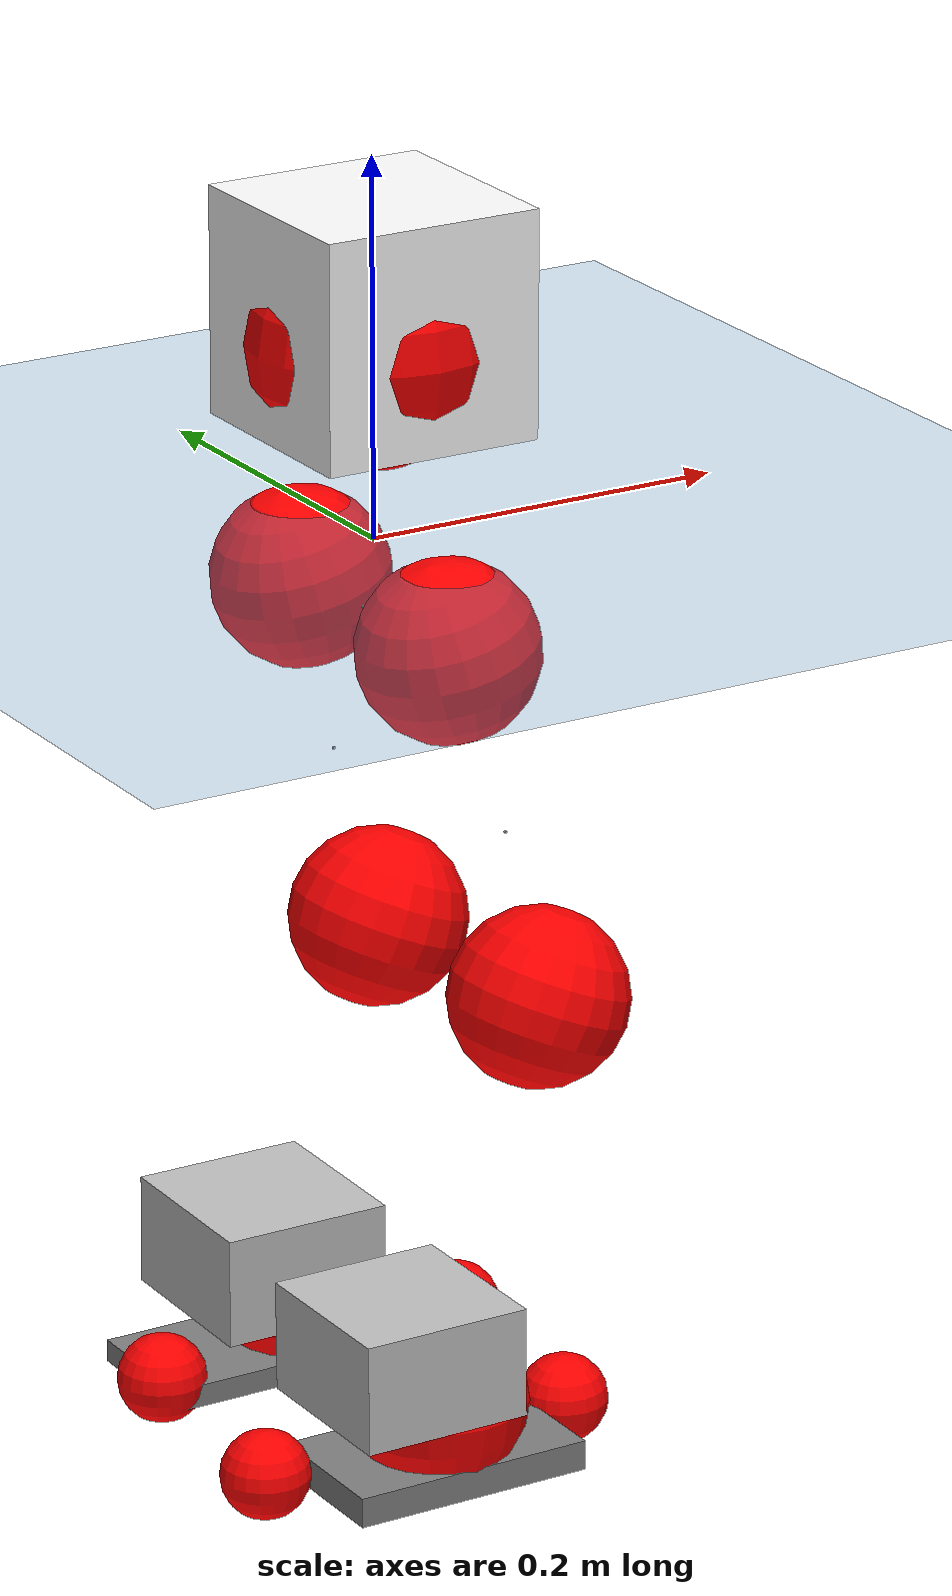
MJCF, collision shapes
<mujoco model="pi_12dof_release_v1">
  <compiler angle="radian" assetdir="assets" balanceinertia="true" inertiafromgeom="false"/>

  <option timestep="0.005" density="1.2" viscosity="2e-05"/>

  <size nkey="1"/>

  <visual>
    <quality shadowsize="8192"/>
    <map shadowclip="0.5"/>
  </visual>

  <default>
    <default class="/">
      <joint armature="0.01" damping="0.01" frictionloss="0.01"/>
      <geom contype="0" conaffinity="0" group="1" solref="-1000 -80"/>
      <site size="0.01 0.005 0.005" group="5"/>
      <general forcelimited="true" biastype="affine" gainprm="20" biasprm="0 -20 -0.5"/>
      <default class="foot">
        <geom size="0.0845 0.036 0.005" type="box" condim="6" group="4" priority="1" friction="0.9 0.2 0.2" solimp="0.015 1 0.005"/>
      </default>
      <default class="reward_collision_sphere">
        <geom group="5" rgba="1 0 0 1"/>
      </default>
    </default>
  </default>

  <asset>
    <texture type="skybox" colorspace="auto" name="//unnamed_texture_0" builtin="gradient" rgb1="0.95 0.95 0.95" rgb2="0.95 0.95 0.95" width="100" height="600"/>
    <texture type="2d" colorspace="auto" name="texplane" builtin="checker" rgb1="0.345 0.575 0.748" rgb2="0.345 0.575 0.748" markrgb="1 1 1" width="512" height="512"/>
    <material name="MatPlane" class="/" texture="texplane" texuniform="true" texrepeat="2 2" specular="0.9"/>
    <mesh name="baselink_1" class="/" file="baselink_1.STL"/>
    <mesh name="r_hip_pitch_link" class="/" file="r_hip_pitch_link.STL"/>
    <mesh name="r_hip_roll_link" class="/" file="r_hip_roll_link.STL"/>
    <mesh name="r_thigh_link" class="/" file="r_thigh_link.STL"/>
    <mesh name="r_calf_link" class="/" file="r_calf_link.STL"/>
    <mesh name="r_ankle_pitch_link" class="/" file="r_ankle_pitch_link.STL"/>
    <mesh name="r_ankle_roll_link" class="/" file="r_ankle_roll_link.STL"/>
    <mesh name="l_hip_pitch_link" class="/" file="l_hip_pitch_link.STL"/>
    <mesh name="l_hip_roll_link" class="/" file="l_hip_roll_link.STL"/>
    <mesh name="l_thigh_link" class="/" file="l_thigh_link.STL"/>
    <mesh name="l_calf_link" class="/" file="l_calf_link.STL"/>
    <mesh name="l_ankle_pitch_link" class="/" file="l_ankle_pitch_link.STL"/>
    <mesh name="l_ankle_roll_link" class="/" file="l_ankle_roll_link.STL"/>
  </asset>

  <worldbody>
    <geom name="floor" class="/" size="100 100 0.125" type="plane" group="0" material="MatPlane"/>
    <light name="toplight_shadow" class="/" pos="0 0 5" dir="0.0990148 0.0990148 -0.990148" type="directional" ambient="0.04 0.04 0.04" diffuse="0.55 0.55 0.55" specular="0.12 0.12 0.12"/>
    <light name="toplight_fill" class="/" pos="0 0 5" dir="0.0990148 0.0990148 -0.990148" type="directional" castshadow="false" ambient="0.04 0.04 0.04" diffuse="0.3 0.3 0.3" specular="0.08 0.08 0.08"/>
    <body name="trunk" pos="-5.49267e-05 -0.000312315 0.00710072" quat="1 0.000276604 0.000674078 0.000269952">
      <inertial pos="0.00439352 -0.010912 0.0483154" quat="0.694348 0.0106048 0.00951947 0.719499" mass="3.8311" diaginertia="0.0374361 0.00431829 0.0231732"/>
      <joint name="//unnamed_joint_0" type="free"/>
      <geom name="//unnamed_geom_1" class="/" type="mesh" density="0" rgba="1 1 1 1" mesh="baselink_1"/>
      <geom name="//unnamed_geom_2" class="/" size="0.0596645 0.0596645 0.0596645" pos="0 0 0.112023" type="box" rgba="1 1 1 1"/>
      <geom name="//unnamed_geom_3" class="reward_collision_sphere" size="0.0656309" pos="0 0 0.0980199"/>
      <site name="imu" class="/" pos="-0.0132387 0.0255532 -0.0150383" size="0.0119329"/>
      <camera name="track" class="/" pos="0 -1.70423 0" quat="0.707107 0.707107 0 0" mode="trackcom"/>
      <camera name="ego_camera" class="/" pos="0.0995603 0 0.252051" quat="-0.5 -0.5 0.5 0.5"/>
      <body name="r_hip_pitch_link" pos="0.00182035 -0.0137502 -0.045884" quat="0.992148 0.00057171 -0.125065 -0.000292439">
        <inertial pos="0.0104559 -0.0492361 0.00441681" quat="-0.0190666 0.706296 -0.0284468 0.707087" mass="0.656421" diaginertia="0.000455441 4.78833e-05 0.000427361"/>
        <joint name="r_hip_pitch_joint" class="/" pos="0 0 0" axis="0.0177475 -0.998526 0.0512876" range="-1.74292 1.38282" armature="0.0151291" damping="0.0334751" frictionloss="0.016503"/>
        <geom name="//unnamed_geom_4" class="/" type="mesh" density="0" rgba="0.75294 0.75294 0.75294 1" mesh="r_hip_pitch_link"/>
        <geom name="//unnamed_geom_5" class="/" size="0.000596645 0.000596645 0.000596645" type="box" rgba="0.75294 0.75294 0.75294 1"/>
        <body name="r_hip_roll_link" pos="0.00401349 -0.0481571 -0.00404237" quat="1 0.000245602 7.85888e-05 -0.000305237">
          <inertial pos="-0.00252008 -0.00237344 -0.0801379" quat="0.705688 -0.0808158 -0.0895779 0.698175" mass="0.72762" diaginertia="0.00134019 0.000126014 0.00088799"/>
          <joint name="r_hip_roll_joint" class="/" pos="0 0 0" axis="-0.999252 0.027258 -0.0274189" stiffness="0.0188581" range="-0.13056 0.477575" armature="0.0119532" damping="0.0703383" frictionloss="0.00874946"/>
          <geom name="//unnamed_geom_6" class="/" type="mesh" density="0" rgba="0.75294 0.75294 0.75294 1" mesh="r_hip_roll_link"/>
          <geom name="//unnamed_geom_7" class="/" size="0.000596645 0.000596645 0.000596645" type="box" rgba="0.75294 0.75294 0.75294 1"/>
          <geom name="//unnamed_geom_8" class="reward_collision_sphere" size="0.0477316"/>
          <body name="r_thigh_link" pos="0.00389501 -0.00684601 -0.104925" quat="0.999987 -0.00447291 -0.00252255 0.000619089">
            <inertial pos="-0.000840062 0.00105018 -0.0688695" quat="0.737248 0.675622 -0.000104747 -0.000113368" mass="0.217122" diaginertia="0.000508622 4.41186e-05 0.000346139"/>
            <joint name="r_thigh_joint" class="/" pos="0 0 0" axis="-0.0075943 0.00335694 -0.999966" range="-0.290913 0.733713" armature="0.00667118" damping="0.000364842" frictionloss="0.0128887"/>
            <geom name="//unnamed_geom_9" class="/" type="mesh" density="0" rgba="0.75294 0.75294 0.75294 1" mesh="r_thigh_link"/>
            <geom name="//unnamed_geom_10" class="/" size="0.000596645 0.000596645 0.000596645" type="box" rgba="0.75294 0.75294 0.75294 1"/>
            <body name="r_calf_link" pos="-0.00276638 0.00327458 -0.0980068" quat="0.947146 -0.0035606 0.320778 -0.00178697">
              <inertial pos="-0.00279558 -0.000882375 -0.0974525" quat="0.999925 -0.00420824 -0.00190444 0.0113451" mass="1.51184" diaginertia="0.0160679 0.00186421 0.000923896"/>
              <joint name="r_calf_joint" class="/" pos="0 0 0" axis="0.0283329 -0.998146 -0.0538752" range="-1.57533 0.66049" armature="0.0126282" damping="0.0100106" frictionloss="0.0130389"/>
              <geom name="//unnamed_geom_11" class="/" type="mesh" density="0" rgba="0.75294 0.75294 0.75294 1" mesh="r_calf_link"/>
              <geom name="//unnamed_geom_12" class="/" size="0.000596645 0.000596645 0.000596645" type="box" rgba="0.75294 0.75294 0.75294 1"/>
              <geom name="//unnamed_geom_13" class="reward_collision_sphere" size="0.0477316"/>
              <body name="r_ankle_pitch_link" pos="-0.0117842 -0.00522914 -0.194628" quat="0.980218 -0.000140505 -0.197919 -0.00061717">
                <inertial pos="0.0074664 0.00277524 -0.000181536" quat="-0.00290225 0.7059 -0.00587235 0.708282" mass="0.268263" diaginertia="0.00121701 8.86075e-05 0.000543989"/>
                <joint name="r_ankle_pitch_joint" class="/" pos="0 0 0" axis="0.0203352 -0.999772 0.00649522" stiffness="0.0191955" range="-1.17304 0.425537" armature="0.0116078" damping="0" frictionloss="0.00655761"/>
                <geom name="//unnamed_geom_14" class="/" type="mesh" density="0" rgba="0.75294 0.75294 0.75294 1" mesh="r_ankle_pitch_link"/>
                <geom name="//unnamed_geom_15" class="/" size="0.0465383 0.0477316 0.0298322" type="box" rgba="0.75294 0.75294 0.75294 1"/>
                <body name="r_ankle_roll_link" pos="0.089192 0.00160042 -0.00505938" quat="1 0.000224098 0.0001028 -0.000124806">
                  <inertial pos="-0.0284358 0.00125521 -0.0317669" quat="0.565253 0.434766 0.430778 0.55308" mass="1.03584" diaginertia="0.00440603 0.00046112 0.00151765"/>
                  <joint name="r_ankle_roll_joint" class="/" pos="0 0 0" axis="-0.999953 -0.00410882 -0.00875625" range="-0.142522 0.157387" armature="0.0115825" damping="0.0027999" frictionloss="0.00481717"/>
                  <geom name="//unnamed_geom_16" class="/" type="mesh" density="0" rgba="0.75294 0.75294 0.75294 1" mesh="r_ankle_roll_link"/>
                  <geom name="//unnamed_geom_17" class="/" type="mesh" rgba="0.75294 0.75294 0.75294 1" mesh="r_ankle_roll_link"/>
                  <geom name="right_foot" class="foot" size="0.0665731 0.0389862 0.00811642" pos="-0.067701 0 -0.0616125"/>
                  <geom name="//unnamed_geom_19" class="reward_collision_sphere" size="0.0477316" pos="-0.0663735 0 -0.0280057"/>
                  <geom name="//unnamed_geom_20" class="reward_collision_sphere" size="0.0238658" pos="0.0199121 0.0170423 -0.0560113"/>
                  <geom name="//unnamed_geom_21" class="reward_collision_sphere" size="0.0238658" pos="-0.159296 0.0170423 -0.0560113"/>
                  <site name="right_foot" class="foot" pos="-0.067701 0 -0.0616125" size="0.0119329"/>
                </body>
              </body>
            </body>
          </body>
        </body>
      </body>
      <body name="l_hip_pitch_link" pos="0.00119515 0.0123959 -0.0475538" quat="0.992183 0.000141898 -0.124791 -9.97651e-05">
        <inertial pos="0.00558901 0.0553391 -0.000567466" quat="-0.0526655 0.673522 0.0764999 0.733309" mass="0.763868" diaginertia="0.000510727 4.33426e-05 0.000566963"/>
        <joint name="l_hip_pitch_joint" class="/" pos="0 0 0" axis="-0.000514251 0.999898 -0.0142856" range="-1.41015 1.95521" armature="0.0082225" damping="0" frictionloss="0.0171811"/>
        <geom name="//unnamed_geom_22" class="/" type="mesh" density="0" rgba="0.75294 0.75294 0.75294 1" mesh="l_hip_pitch_link"/>
        <geom name="//unnamed_geom_23" class="/" size="0.000596645 0.000596645 0.000596645" type="box" rgba="0.75294 0.75294 0.75294 1"/>
        <body name="l_hip_roll_link" pos="-0.00298177 0.0575472 0.000746871" quat="0.999997 -0.00224281 -0.000221849 -0.000822342">
          <inertial pos="-0.00024426 0.00712228 -0.0869733" quat="0.689083 -0.083654 -0.0782764 0.715569" mass="0.634034" diaginertia="0.0011989 0.00011537 0.000567958"/>
          <joint name="l_hip_roll_joint" class="/" pos="0 0 0" axis="-0.999801 -0.018038 -0.00846258" stiffness="0.0109917" range="-0.744361 0.326736" armature="0.0107204" damping="0" frictionloss="0.0123868"/>
          <geom name="//unnamed_geom_24" class="/" type="mesh" density="0" rgba="0.75294 0.75294 0.75294 1" mesh="l_hip_roll_link"/>
          <geom name="//unnamed_geom_25" class="/" size="0.000596645 0.000596645 0.000596645" type="box" rgba="0.75294 0.75294 0.75294 1"/>
          <geom name="//unnamed_geom_26" class="reward_collision_sphere" size="0.0477316"/>
          <body name="l_thigh_link" pos="-0.00794773 -0.00398209 -0.0970771" quat="0.999991 0.00312051 -0.00152152 0.00256549">
            <inertial pos="-0.00797918 0.00147188 -0.0598386" quat="0.675508 0.737353 0.000606523 -4.45291e-05" mass="0.180057" diaginertia="0.000444312 3.11774e-05 0.000219854"/>
            <joint name="l_thigh_joint" class="/" pos="0 0 0" axis="-0.00749312 0.00049099 -0.999972" stiffness="0.00517461" range="-0.635273 0.476045" armature="0.0143864" damping="0" frictionloss="0.0161912"/>
            <geom name="//unnamed_geom_27" class="/" type="mesh" density="0" rgba="0.75294 0.75294 0.75294 1" mesh="l_thigh_link"/>
            <geom name="//unnamed_geom_28" class="/" size="0.000596645 0.000596645 0.000596645" type="box" rgba="0.75294 0.75294 0.75294 1"/>
            <body name="l_calf_link" pos="-0.00264381 -0.00800934 -0.0977872" quat="0.946613 0.00222146 0.322355 -0.00253494">
              <inertial pos="-0.000521426 -0.00121657 -0.0937011" quat="0.997893 0.0625382 0.00495215 0.0165232" mass="1.52368" diaginertia="0.0145003 0.00179236 0.00101199"/>
              <joint name="l_calf_joint" class="/" pos="0 0 0" axis="0.00416161 0.999936 -0.0105338" range="-0.672308 1.73887" armature="0.0109454" damping="0.00199545" frictionloss="0.0156214"/>
              <geom name="//unnamed_geom_29" class="/" type="mesh" density="0" rgba="0.75294 0.75294 0.75294 1" mesh="l_calf_link"/>
              <geom name="//unnamed_geom_30" class="/" size="0.000596645 0.000596645 0.000596645" type="box" rgba="0.75294 0.75294 0.75294 1"/>
              <geom name="//unnamed_geom_31" class="reward_collision_sphere" size="0.0477316"/>
              <body name="l_ankle_pitch_link" pos="0.00038815 -0.00290631 -0.184908" quat="0.980113 -2.54382e-05 -0.198441 0.000151821">
                <inertial pos="0.00605488 -0.0131521 -0.00531081" quat="-0.0108323 0.693654 0.0375054 0.71925" mass="0.341301" diaginertia="0.0014415 0.00011279 0.000737585"/>
                <joint name="l_ankle_pitch_joint" class="/" pos="0 0 0" axis="-0.0523713 0.998592 0.00848769" range="-0.556644 1.33995" armature="0.0128611" damping="0.0468804" frictionloss="0.0125952"/>
                <geom name="//unnamed_geom_32" class="/" type="mesh" density="0" rgba="0.75294 0.75294 0.75294 1" mesh="l_ankle_pitch_link"/>
                <geom name="//unnamed_geom_33" class="/" size="0.0465383 0.0477316 0.0298322" type="box" rgba="0.75294 0.75294 0.75294 1"/>
                <body name="l_ankle_roll_link" pos="0.0934116 0.00827622 -0.00234113" quat="0.999993 -0.00340323 -0.000348571 0.00144403">
                  <inertial pos="-0.0360698 -0.00209961 -0.0211777" quat="0.521936 0.467792 0.450823 0.552732" mass="1.04857" diaginertia="0.0048994 0.000502764 0.00136035"/>
                  <joint name="l_ankle_roll_joint" class="/" pos="0 0 0" axis="-0.998087 0.0611815 -0.00887963" stiffness="0.0151924" range="-0.176013 0.407704" armature="0.0125663" damping="0.00898965" frictionloss="0.0192316"/>
                  <geom name="//unnamed_geom_34" class="/" type="mesh" density="0" rgba="0.75294 0.75294 0.75294 1" mesh="l_ankle_roll_link"/>
                  <geom name="//unnamed_geom_35" class="/" type="mesh" rgba="0.75294 0.75294 0.75294 1" mesh="l_ankle_roll_link"/>
                  <geom name="left_foot" class="foot" size="0.0949323 0.0369188 0.00613074" pos="-0.067701 0 -0.0616125"/>
                  <geom name="//unnamed_geom_37" class="reward_collision_sphere" size="0.0477316" pos="-0.0663735 0 -0.0280057"/>
                  <geom name="//unnamed_geom_38" class="reward_collision_sphere" size="0.0238658" pos="0.0199121 -0.0170423 -0.0560113"/>
                  <geom name="//unnamed_geom_39" class="reward_collision_sphere" size="0.0238658" pos="-0.159296 -0.0170423 -0.0560113"/>
                  <site name="left_foot" class="foot" pos="-0.067701 0 -0.0616125" size="0.0119329"/>
                </body>
              </body>
            </body>
          </body>
        </body>
      </body>
    </body>
  </worldbody>

  <contact>
    <pair class="/" geom1="floor" geom2="right_foot" name="//unnamed_contact_1"/>
    <pair class="/" geom1="floor" geom2="left_foot" name="//unnamed_contact_0"/>
  </contact>

  <actuator>
    <general name="r_hip_pitch_joint" class="/" joint="r_hip_pitch_joint" forcerange="-31.8112 31.8112" gainprm="25.9477" biasprm="0 -25.9477 -0.59155"/>
    <general name="r_hip_roll_joint" class="/" joint="r_hip_roll_joint" forcerange="-25.4917 25.4917" gainprm="25.9477" biasprm="0 -25.9477 -0.59155"/>
    <general name="r_thigh_joint" class="/" joint="r_thigh_joint" forcerange="-30.6329 30.6329" gainprm="25.9477" biasprm="0 -25.9477 -0.59155"/>
    <general name="r_calf_joint" class="/" joint="r_calf_joint" forcerange="-22.6277 22.6277" gainprm="25.9477" biasprm="0 -25.9477 -0.59155"/>
    <general name="r_ankle_pitch_joint" class="/" joint="r_ankle_pitch_joint" forcerange="-19.2043 19.2043" gainprm="25.9477" biasprm="0 -25.9477 -0.59155"/>
    <general name="r_ankle_roll_joint" class="/" joint="r_ankle_roll_joint" forcerange="-15.5976 15.5976" gainprm="25.9477" biasprm="0 -25.9477 -0.59155"/>
    <general name="l_hip_pitch_joint" class="/" joint="l_hip_pitch_joint" forcerange="-29.9771 29.9771" gainprm="25.9477" biasprm="0 -25.9477 -0.59155"/>
    <general name="l_hip_roll_joint" class="/" joint="l_hip_roll_joint" forcerange="-36.4537 36.4537" gainprm="25.9477" biasprm="0 -25.9477 -0.59155"/>
    <general name="l_thigh_joint" class="/" joint="l_thigh_joint" forcerange="-23.6967 23.6967" gainprm="25.9477" biasprm="0 -25.9477 -0.59155"/>
    <general name="l_calf_joint" class="/" joint="l_calf_joint" forcerange="-27.0057 27.0057" gainprm="25.9477" biasprm="0 -25.9477 -0.59155"/>
    <general name="l_ankle_pitch_joint" class="/" joint="l_ankle_pitch_joint" forcerange="-22.5103 22.5103" gainprm="25.9477" biasprm="0 -25.9477 -0.59155"/>
    <general name="l_ankle_roll_joint" class="/" joint="l_ankle_roll_joint" forcerange="-28.9188 28.9188" gainprm="25.9477" biasprm="0 -25.9477 -0.59155"/>
  </actuator>

  <sensor>
    <gyro site="imu" name="imu_angular_velocity"/>
    <velocimeter site="imu" name="imu_linear_velocity"/>
    <framelinvel objtype="site" objname="left_foot" name="left_foot_global_linear_velocity"/>
    <framelinvel objtype="site" objname="right_foot" name="right_foot_global_linear_velocity"/>
  </sensor>

  <keyframe>
    <key name="home" qpos="0 0 0.291 1 0 0 0 0.4 0 0 -0.8 0.4 0 -0.4 0 0 0.8 -0.4 0"/>
  </keyframe>
</mujoco>
